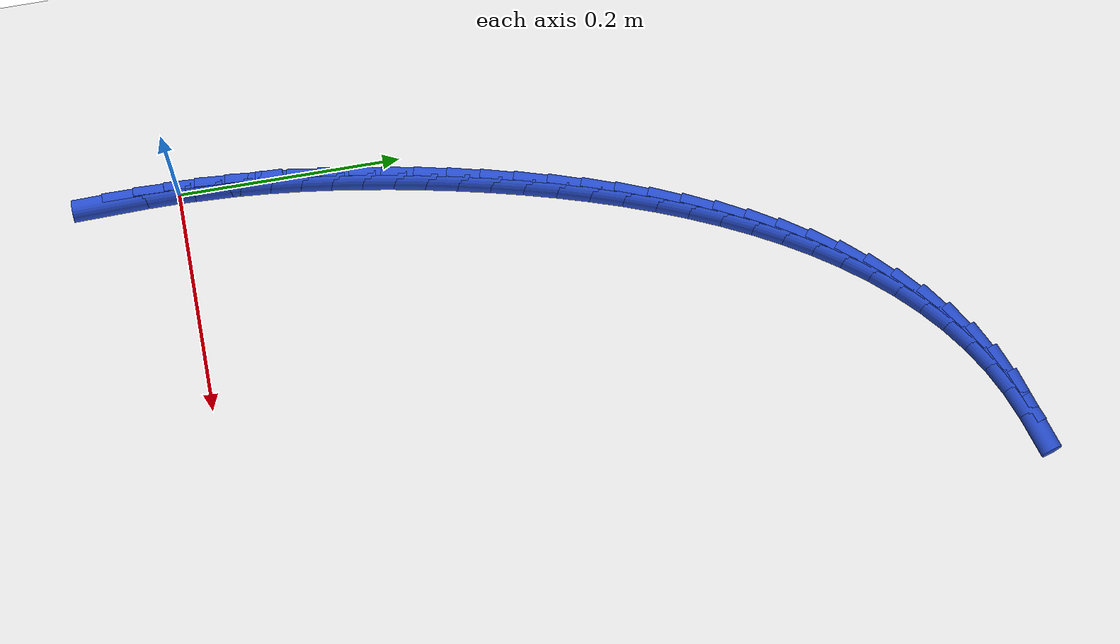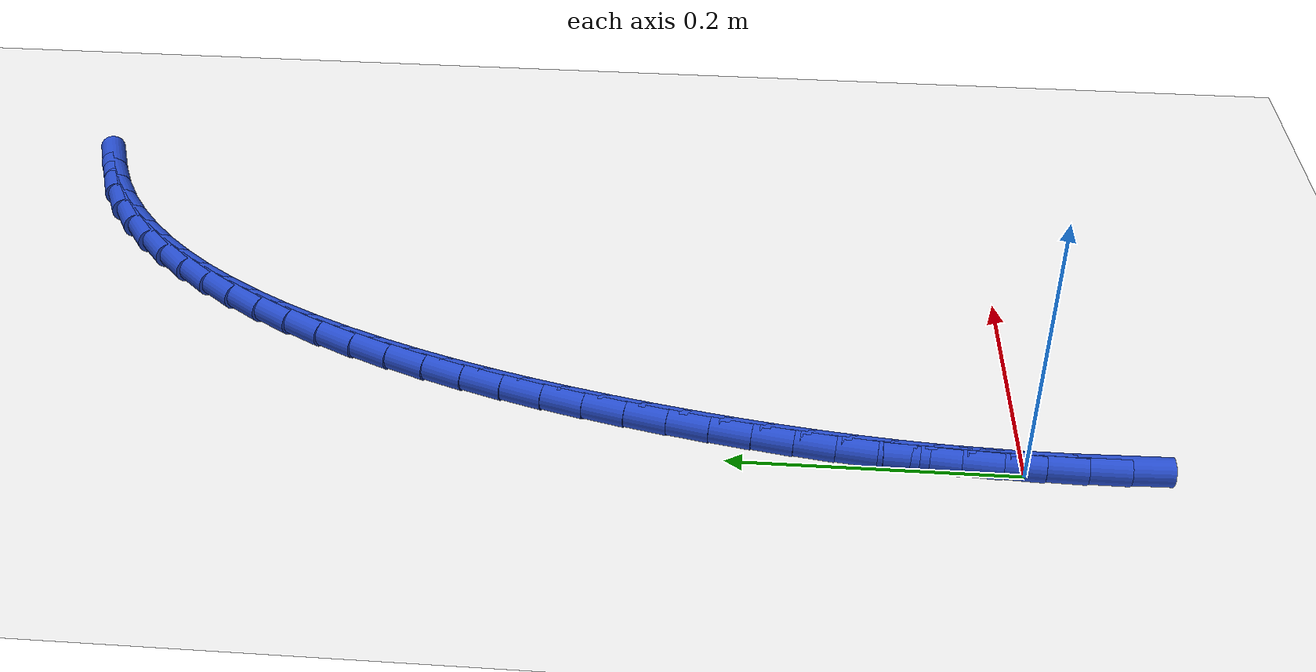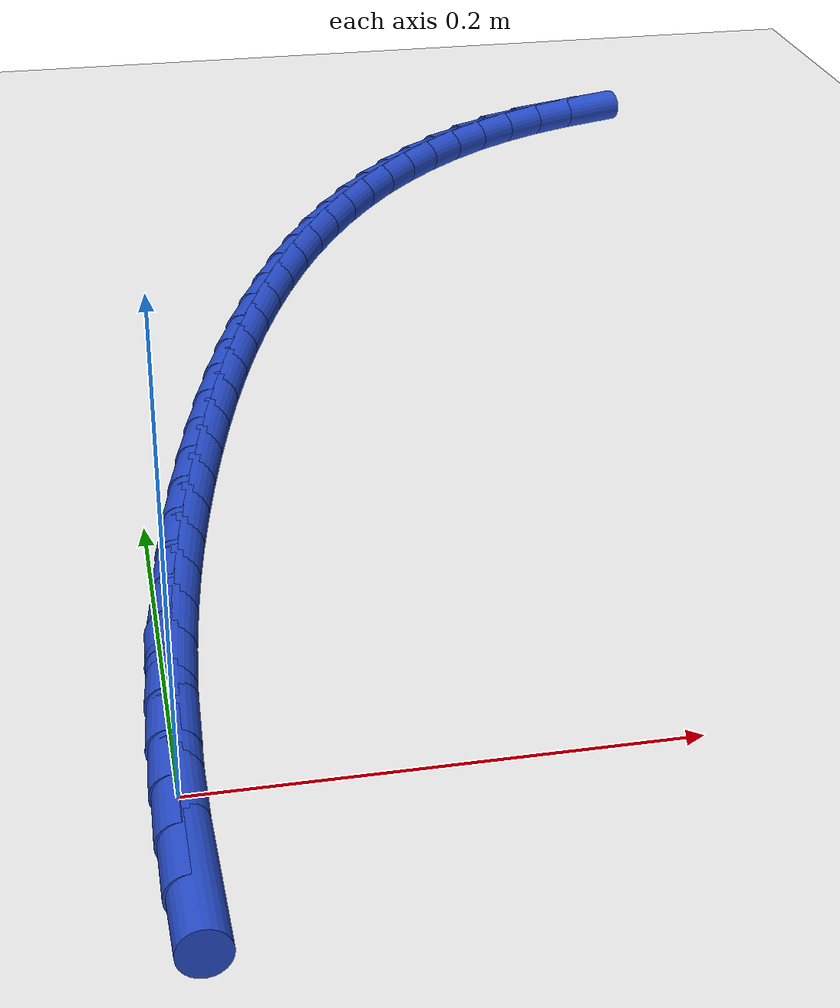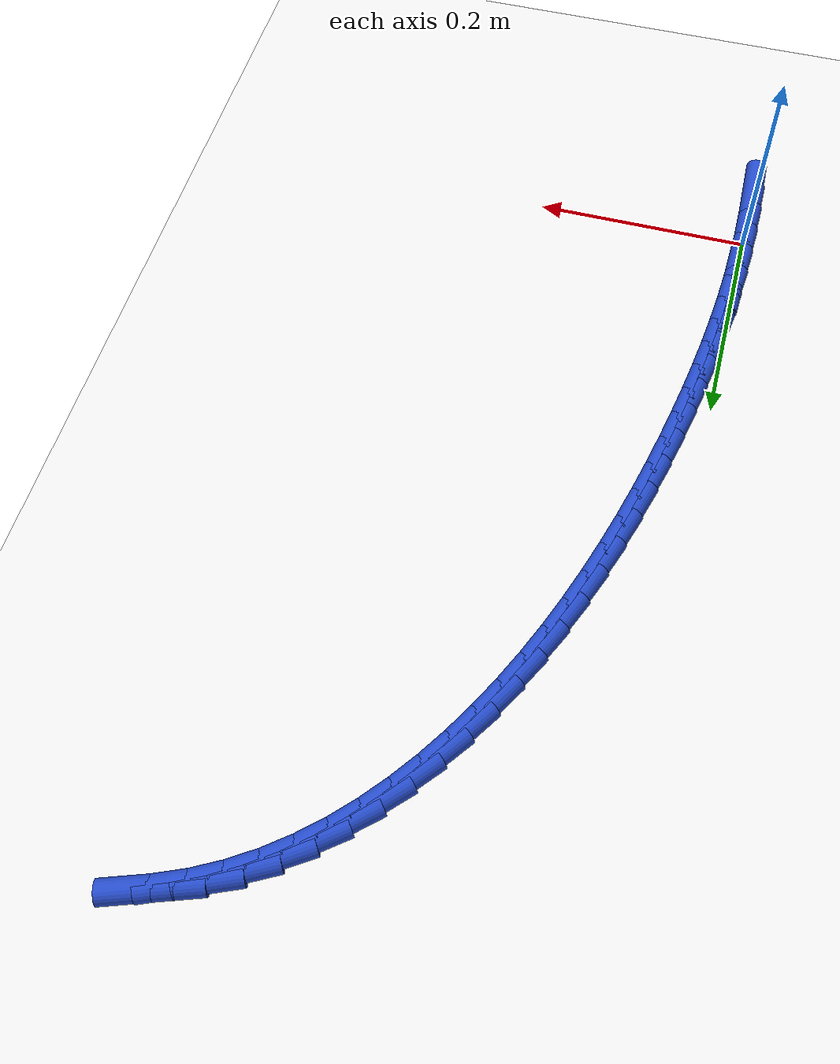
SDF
<sdf version="1.6">
 <world name="default">
  <model name="ground_plane">
   <static>1</static>
   <link name="link">
    <collision name="collision">
     <geometry><plane><normal>0 0 1</normal><size>100 100</size></plane></geometry>
     <surface><friction><ode><mu>100</mu><mu2>50</mu2></ode></friction></surface>
    </collision>
    <visual name="visual">
     <cast_shadows>0</cast_shadows>
     <geometry><plane><normal>0 0 1</normal><size>100 100</size></plane></geometry>
     <material>
      <script><uri>file://media/materials/scripts/gazebo.material</uri><name>Gazebo/WhiteGlow</name></script>
     </material>
    </visual>
   </link>
  </model>
  <model name="line">
   <link name="link_0">
    <pose>0.0 0.0 0.01 0 1.57 1.5403007521404364</pose>
    <collision name="collision">
     <geometry><cylinder><radius>0.01</radius><length>0.08</length></cylinder></geometry>
    </collision>
    <visual name="visual">
     <material>
      <script><name>Gazebo/Blue</name><uri>file://media/materials/scripts/gazebo.material</uri></script>
     </material>
     <geometry><cylinder><radius>0.01</radius><length>0.08</length></cylinder></geometry>
    </visual>
   </link>
   <link name="link_1">
    <pose>0.0008429384960956971 0.02763276915116524 0.01 0 1.57 1.5160550999195674</pose>
    <collision name="collision">
     <geometry><cylinder><radius>0.01</radius><length>0.08</length></cylinder></geometry>
    </collision>
    <visual name="visual">
     <material>
      <script><name>Gazebo/Blue</name><uri>file://media/materials/scripts/gazebo.material</uri></script>
     </material>
     <geometry><cylinder><radius>0.01</radius><length>0.08</length></cylinder></geometry>
    </visual>
   </link>
   <link name="link_2">
    <pose>0.002346321804139864 0.05506878791171287 0.01 0 1.57 1.4921455673835677</pose>
    <collision name="collision">
     <geometry><cylinder><radius>0.01</radius><length>0.08</length></cylinder></geometry>
    </collision>
    <visual name="visual">
     <material>
      <script><name>Gazebo/Blue</name><uri>file://media/materials/scripts/gazebo.material</uri></script>
     </material>
     <geometry><cylinder><radius>0.01</radius><length>0.08</length></cylinder></geometry>
    </visual>
   </link>
   <link name="link_3">
    <pose>0.004500088033579795 0.08239622109470944 0.01 0 1.57 1.4688299530244748</pose>
    <collision name="collision">
     <geometry><cylinder><radius>0.01</radius><length>0.08</length></cylinder></geometry>
    </collision>
    <visual name="visual">
     <material>
      <script><name>Gazebo/Blue</name><uri>file://media/materials/scripts/gazebo.material</uri></script>
     </material>
     <geometry><cylinder><radius>0.01</radius><length>0.08</length></cylinder></geometry>
    </visual>
   </link>
   <link name="link_4">
    <pose>0.007294175293862791 0.10970323351322152 0.01 0 1.57 1.4463513469876295</pose>
    <collision name="collision">
     <geometry><cylinder><radius>0.01</radius><length>0.08</length></cylinder></geometry>
    </collision>
    <visual name="visual">
     <material>
      <script><name>Gazebo/Blue</name><uri>file://media/materials/scripts/gazebo.material</uri></script>
     </material>
     <geometry><cylinder><radius>0.01</radius><length>0.08</length></cylinder></geometry>
    </visual>
   </link>
   <link name="link_5">
    <pose>0.010718521694436146 0.13707798998031562 0.01 0 1.57 1.4249292615594318</pose>
    <collision name="collision">
     <geometry><cylinder><radius>0.01</radius><length>0.08</length></cylinder></geometry>
    </collision>
    <visual name="visual">
     <material>
      <script><name>Gazebo/Blue</name><uri>file://media/materials/scripts/gazebo.material</uri></script>
     </material>
     <geometry><cylinder><radius>0.01</radius><length>0.08</length></cylinder></geometry>
    </visual>
   </link>
   <link name="link_6">
    <pose>0.01476306534474716 0.16460865530905835 0.01 0 1.57 1.4047525400629095</pose>
    <collision name="collision">
     <geometry><cylinder><radius>0.01</radius><length>0.08</length></cylinder></geometry>
    </collision>
    <visual name="visual">
     <material>
      <script><name>Gazebo/Blue</name><uri>file://media/materials/scripts/gazebo.material</uri></script>
     </material>
     <geometry><cylinder><radius>0.01</radius><length>0.08</length></cylinder></geometry>
    </visual>
   </link>
   <link name="link_7">
    <pose>0.019417744354243125 0.19238339431251622 0.01 0 1.57 1.385974489542087</pose>
    <collision name="collision">
     <geometry><cylinder><radius>0.01</radius><length>0.08</length></cylinder></geometry>
    </collision>
    <visual name="visual">
     <material>
      <script><name>Gazebo/Blue</name><uri>file://media/materials/scripts/gazebo.material</uri></script>
     </material>
     <geometry><cylinder><radius>0.01</radius><length>0.08</length></cylinder></geometry>
    </visual>
   </link>
   <link name="link_8">
    <pose>0.024672496832371348 0.22049037180375586 0.01 0 1.57 1.3683050096618266</pose>
    <collision name="collision">
     <geometry><cylinder><radius>0.01</radius><length>0.08</length></cylinder></geometry>
    </collision>
    <visual name="visual">
     <material>
      <script><name>Gazebo/Blue</name><uri>file://media/materials/scripts/gazebo.material</uri></script>
     </material>
     <geometry><cylinder><radius>0.01</radius><length>0.08</length></cylinder></geometry>
    </visual>
   </link>
   <link name="link_9">
    <pose>0.030523401681201965 0.24898896514108323 0.01 0 1.57 1.3497427687739518</pose>
    <collision name="collision">
     <geometry><cylinder><radius>0.01</radius><length>0.08</length></cylinder></geometry>
    </collision>
    <visual name="visual">
     <material>
      <script><name>Gazebo/Blue</name><uri>file://media/materials/scripts/gazebo.material</uri></script>
     </material>
     <geometry><cylinder><radius>0.01</radius><length>0.08</length></cylinder></geometry>
    </visual>
   </link>
   <link name="link_10">
    <pose>0.03699701584726615 0.27779567349427137 0.01 0 1.57 1.3295372013325133</pose>
    <collision name="collision">
     <geometry><cylinder><radius>0.01</radius><length>0.08</length></cylinder></geometry>
    </collision>
    <visual name="visual">
     <material>
      <script><name>Gazebo/Blue</name><uri>file://media/materials/scripts/gazebo.material</uri></script>
     </material>
     <geometry><cylinder><radius>0.01</radius><length>0.08</length></cylinder></geometry>
    </visual>
   </link>
   <link name="link_11">
    <pose>0.04412933418608833 0.30678275200876887 0.01 0 1.57 1.307524137213897</pose>
    <collision name="collision">
     <geometry><cylinder><radius>0.01</radius><length>0.08</length></cylinder></geometry>
    </collision>
    <visual name="visual">
     <material>
      <script><name>Gazebo/Blue</name><uri>file://media/materials/scripts/gazebo.material</uri></script>
     </material>
     <geometry><cylinder><radius>0.01</radius><length>0.08</length></cylinder></geometry>
    </visual>
   </link>
   <link name="link_12">
    <pose>0.05195635438358558 0.335822442561411 0.01 0 1.57 1.2835144472038014</pose>
    <collision name="collision">
     <geometry><cylinder><radius>0.01</radius><length>0.08</length></cylinder></geometry>
    </collision>
    <visual name="visual">
     <material>
      <script><name>Gazebo/Blue</name><uri>file://media/materials/scripts/gazebo.material</uri></script>
     </material>
     <geometry><cylinder><radius>0.01</radius><length>0.08</length></cylinder></geometry>
    </visual>
   </link>
   <link name="link_13">
    <pose>0.060514074125675 0.3647869870290334 0.01 0 1.57 1.2572915305209686</pose>
    <collision name="collision">
     <geometry><cylinder><radius>0.01</radius><length>0.08</length></cylinder></geometry>
    </collision>
    <visual name="visual">
     <material>
      <script><name>Gazebo/Blue</name><uri>file://media/materials/scripts/gazebo.material</uri></script>
     </material>
     <geometry><cylinder><radius>0.01</radius><length>0.08</length></cylinder></geometry>
    </visual>
   </link>
   <link name="link_14">
    <pose>0.06983849109827363 0.39354862728847173 0.01 0 1.57 1.2286089115119978</pose>
    <collision name="collision">
     <geometry><cylinder><radius>0.01</radius><length>0.08</length></cylinder></geometry>
    </collision>
    <visual name="visual">
     <material>
      <script><name>Gazebo/Blue</name><uri>file://media/materials/scripts/gazebo.material</uri></script>
     </material>
     <geometry><cylinder><radius>0.01</radius><length>0.08</length></cylinder></geometry>
    </visual>
   </link>
   <link name="link_15">
    <pose>0.0799656029872986 0.4219796052165614 0.01 0 1.57 1.1971880550110687</pose>
    <collision name="collision">
     <geometry><cylinder><radius>0.01</radius><length>0.08</length></cylinder></geometry>
    </collision>
    <visual name="visual">
     <material>
      <script><name>Gazebo/Blue</name><uri>file://media/materials/scripts/gazebo.material</uri></script>
     </material>
     <geometry><cylinder><radius>0.01</radius><length>0.08</length></cylinder></geometry>
    </visual>
   </link>
   <link name="link_16">
    <pose>0.09093140747866699 0.4499521626901382 0.01 0 1.57 1.1627168600469073</pose>
    <collision name="collision">
     <geometry><cylinder><radius>0.01</radius><length>0.08</length></cylinder></geometry>
    </collision>
    <visual name="visual">
     <material>
      <script><name>Gazebo/Blue</name><uri>file://media/materials/scripts/gazebo.material</uri></script>
     </material>
     <geometry><cylinder><radius>0.01</radius><length>0.08</length></cylinder></geometry>
    </visual>
   </link>
   <link name="link_17">
    <pose>0.1027719022582958 0.47733854158603733 0.01 0 1.57 1.124849536209441</pose>
    <collision name="collision">
     <geometry><cylinder><radius>0.01</radius><length>0.08</length></cylinder></geometry>
    </collision>
    <visual name="visual">
     <material>
      <script><name>Gazebo/Blue</name><uri>file://media/materials/scripts/gazebo.material</uri></script>
     </material>
     <geometry><cylinder><radius>0.01</radius><length>0.08</length></cylinder></geometry>
    </visual>
   </link>
   <link name="link_18">
    <pose>0.11552308501210215 0.5040109837810945 0.01 0 1.57 1.0832089118174744</pose>
    <collision name="collision">
     <geometry><cylinder><radius>0.01</radius><length>0.08</length></cylinder></geometry>
    </collision>
    <visual name="visual">
     <material>
      <script><name>Gazebo/Blue</name><uri>file://media/materials/scripts/gazebo.material</uri></script>
     </material>
     <geometry><cylinder><radius>0.01</radius><length>0.08</length></cylinder></geometry>
    </visual>
   </link>
   <link name="link_19">
    <pose>0.12922095342600318 0.5298417311521454 0.01 0 1.57 1.037392675830754</pose>
    <collision name="collision">
     <geometry><cylinder><radius>0.01</radius><length>0.08</length></cylinder></geometry>
    </collision>
    <visual name="visual">
     <material>
      <script><name>Gazebo/Blue</name><uri>file://media/materials/scripts/gazebo.material</uri></script>
     </material>
     <geometry><cylinder><radius>0.01</radius><length>0.08</length></cylinder></geometry>
    </visual>
   </link>
   <link name="link_20">
    <pose>0.14390150518591585 0.5547030255760252 0.01 0 1.57 0.98698559013131</pose>
    <collision name="collision">
     <geometry><cylinder><radius>0.01</radius><length>0.08</length></cylinder></geometry>
    </collision>
    <visual name="visual">
     <material>
      <script><name>Gazebo/Blue</name><uri>file://media/materials/scripts/gazebo.material</uri></script>
     </material>
     <geometry><cylinder><radius>0.01</radius><length>0.08</length></cylinder></geometry>
    </visual>
   </link>
   <link name="link_21">
    <pose>0.15960073797775734 0.57846710892957 0.01 0 1.57 0.9315802237671242</pose>
    <collision name="collision">
     <geometry><cylinder><radius>0.01</radius><length>0.08</length></cylinder></geometry>
    </collision>
    <visual name="visual">
     <material>
      <script><name>Gazebo/Blue</name><uri>file://media/materials/scripts/gazebo.material</uri></script>
     </material>
     <geometry><cylinder><radius>0.01</radius><length>0.08</length></cylinder></geometry>
    </visual>
   </link>
   <link name="link_22">
    <pose>0.17635464948744473 0.6010062230896149 0.01 0 1.57 0.8708090156658082</pose>
    <collision name="collision">
     <geometry><cylinder><radius>0.01</radius><length>0.08</length></cylinder></geometry>
    </collision>
    <visual name="visual">
     <material>
      <script><name>Gazebo/Blue</name><uri>file://media/materials/scripts/gazebo.material</uri></script>
     </material>
     <geometry><cylinder><radius>0.01</radius><length>0.08</length></cylinder></geometry>
    </visual>
   </link>
   <link name="link_23">
    <pose>0.194199237400895 0.6221926099329959 0.01 0 1.57 0.8043900182225887</pose>
    <collision name="collision">
     <geometry><cylinder><radius>0.01</radius><length>0.08</length></cylinder></geometry>
    </collision>
    <visual name="visual">
     <material>
      <script><name>Gazebo/Blue</name><uri>file://media/materials/scripts/gazebo.material</uri></script>
     </material>
     <geometry><cylinder><radius>0.01</radius><length>0.08</length></cylinder></geometry>
    </visual>
   </link>
   <link name="link_24">
    <pose>0.21317049940402527 0.6418985113365477 0.01 0 1.57 0.7321868368173543</pose>
    <collision name="collision">
     <geometry><cylinder><radius>0.01</radius><length>0.08</length></cylinder></geometry>
    </collision>
    <visual name="visual">
     <material>
      <script><name>Gazebo/Blue</name><uri>file://media/materials/scripts/gazebo.material</uri></script>
     </material>
     <geometry><cylinder><radius>0.01</radius><length>0.08</length></cylinder></geometry>
    </visual>
   </link>
   <link name="link_25">
    <pose>0.23330443318275274 0.6599961691771069 0.01 0 1.57 0.6542793305869732</pose>
    <collision name="collision">
     <geometry><cylinder><radius>0.01</radius><length>0.08</length></cylinder></geometry>
    </collision>
    <visual name="visual">
     <material>
      <script><name>Gazebo/Blue</name><uri>file://media/materials/scripts/gazebo.material</uri></script>
     </material>
     <geometry><cylinder><radius>0.01</radius><length>0.08</length></cylinder></geometry>
    </visual>
   </link>
   <link name="link_26">
    <pose>0.2546370364229943 0.6763578253315083 0.01 0 1.57 0.5710353343384427</pose>
    <collision name="collision">
     <geometry><cylinder><radius>0.01</radius><length>0.08</length></cylinder></geometry>
    </collision>
    <visual name="visual">
     <material>
      <script><name>Gazebo/Blue</name><uri>file://media/materials/scripts/gazebo.material</uri></script>
     </material>
     <geometry><cylinder><radius>0.01</radius><length>0.08</length></cylinder></geometry>
    </visual>
   </link>
   <link name="link_27">
    <pose>0.277204306810667 0.6908557216765876 0.01 0 1.57 0.4831661951304047</pose>
    <collision name="collision">
     <geometry><cylinder><radius>0.01</radius><length>0.08</length></cylinder></geometry>
    </collision>
    <visual name="visual">
     <material>
      <script><name>Gazebo/Blue</name><uri>file://media/materials/scripts/gazebo.material</uri></script>
     </material>
     <geometry><cylinder><radius>0.01</radius><length>0.08</length></cylinder></geometry>
    </visual>
   </link>
   <link name="link_28">
    <pose>0.30104224203168817 0.7033621000891808 0.01 0 1.57 0.3944288428541046</pose>
    <collision name="collision">
     <geometry><cylinder><radius>0.01</radius><length>0.08</length></cylinder></geometry>
    </collision>
    <visual name="visual">
     <material>
      <script><name>Gazebo/Blue</name><uri>file://media/materials/scripts/gazebo.material</uri></script>
     </material>
     <geometry><cylinder><radius>0.01</radius><length>0.08</length></cylinder></geometry>
    </visual>
   </link>
   <link name="link_29">
    <pose>0.3261543498322696 0.7138148029819906 0.01 0 1.57 0.33050395442711866</pose>
    <collision name="collision">
     <geometry><cylinder><radius>0.01</radius><length>0.08</length></cylinder></geometry>
    </collision>
    <visual name="visual">
     <material>
      <script><name>Gazebo/Blue</name><uri>file://media/materials/scripts/gazebo.material</uri></script>
     </material>
     <geometry><cylinder><radius>0.01</radius><length>0.08</length></cylinder></geometry>
    </visual>
   </link>
   <link name="link_278">
    <pose>0.00043396136853770064 -0.0559260646244195 0.01 0 1.57 -1.5496142887914623</pose>
    <collision name="collision">
     <geometry><cylinder><radius>0.01</radius><length>0.08</length></cylinder></geometry>
    </collision>
    <visual name="visual">
     <material>
      <script><name>Gazebo/Blue</name><uri>file://media/materials/scripts/gazebo.material</uri></script>
     </material>
     <geometry><cylinder><radius>0.01</radius><length>0.08</length></cylinder></geometry>
    </visual>
   </link>
   <link name="link_279">
    <pose>-0.00016014974826042026 -0.02788238634209539 0.01 0 1.57 1.565052629495278</pose>
    <collision name="collision">
     <geometry><cylinder><radius>0.01</radius><length>0.08</length></cylinder></geometry>
    </collision>
    <visual name="visual">
     <material>
      <script><name>Gazebo/Blue</name><uri>file://media/materials/scripts/gazebo.material</uri></script>
     </material>
     <geometry><cylinder><radius>0.01</radius><length>0.08</length></cylinder></geometry>
    </visual>
   </link>
   <link name="link_280">
    <pose>-1.3010426069826053e-18 9.020562075079397e-17 0.01 0 1.57 1.540706405207133</pose>
    <collision name="collision">
     <geometry><cylinder><radius>0.01</radius><length>0.08</length></cylinder></geometry>
    </collision>
    <visual name="visual">
     <material>
      <script><name>Gazebo/Blue</name><uri>file://media/materials/scripts/gazebo.material</uri></script>
     </material>
     <geometry><cylinder><radius>0.01</radius><length>0.08</length></cylinder></geometry>
    </visual>
   </link>
   <link name="link_281">
    <pose>0.0008306564507615877 0.027597471138411413 0.01 0 1.57 1.5187116402287564</pose>
    <collision name="collision">
     <geometry><cylinder><radius>0.01</radius><length>0.08</length></cylinder></geometry>
    </collision>
    <visual name="visual">
     <material>
      <script><name>Gazebo/Blue</name><uri>file://media/materials/scripts/gazebo.material</uri></script>
     </material>
     <geometry><cylinder><radius>0.01</radius><length>0.08</length></cylinder></geometry>
    </visual>
   </link>
   <link name="link_282">
    <pose>0.0022480654414670015 0.05478640380968219 0.01 0 1.57 1.529786060615849</pose>
    <collision name="collision">
     <geometry><cylinder><radius>0.01</radius><length>0.08</length></cylinder></geometry>
    </collision>
    <visual name="visual">
     <material>
      <script><name>Gazebo/Blue</name><uri>file://media/materials/scripts/gazebo.material</uri></script>
     </material>
     <geometry><cylinder><radius>0.01</radius><length>0.08</length></cylinder></geometry>
    </visual>
   </link>
  </model>
 </world>
</sdf>
